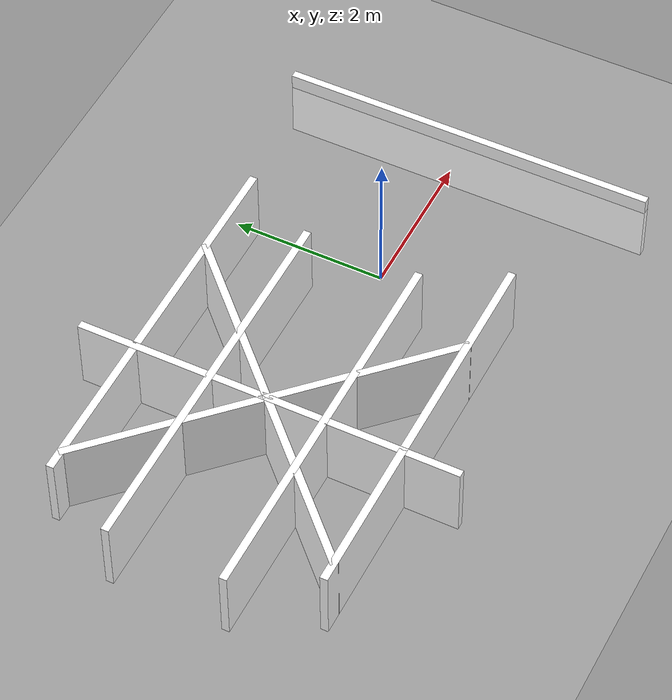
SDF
<sdf version="1.8">
 <world name="demo">
  <plugin filename="gz-sim-physics-system" name="gz::sim::systems::Physics"/>
  <plugin filename="gz-sim-sensors-system" name="gz::sim::systems::Sensors">
   <render_engine>ogre2</render_engine>
  </plugin>
  <plugin filename="gz-sim-scene-broadcaster-system" name="gz::sim::systems::SceneBroadcaster"/>
  <plugin filename="gz-sim-user-commands-system" name="gz::sim::systems::UserCommands"/>
  <plugin filename="gz-sim-imu-system" name="gz::sim::systems::Imu"/>
  <plugin filename="gz-sim-magnetometer-system" name="gz::sim::systems::Magnetometer"/>
  <include><uri>model://sun</uri></include>
  <model name="plane">
   <static>true</static>
   <self_collide>true</self_collide>
   <pose relative_to="world">0 0 0 0 0 0</pose>
   <include merge="true"><uri>model://ground_plane</uri></include>
  </model>
  <include><uri>model://wall_2x5m_</uri><pose>2.5 0 -0.8 0 0 0</pose><name>front</name></include>
  <include><uri>model://wall_2x5m</uri><pose relative_to="front">-3 0.75 0 0 0 0</pose><name>a1</name></include>
  <include>
   <uri>model://wall_2x5m</uri>
   <pose relative_to="front">-3 -0.75 0 0 0 0</pose>
   <name>a2</name>
  </include>
  <include>
   <uri>model://wall_2x5m</uri>
   <pose relative_to="front">-2.5 1.75 0 0 0 0</pose>
   <name>a3</name>
  </include>
  <include>
   <uri>model://wall_2x5m</uri>
   <pose relative_to="front">-2.5 -1.75 0 0 0 0</pose>
   <name>a4</name>
  </include>
  <include><uri>model://wall_2x5m_</uri><pose relative_to="a1">-3 0 0 0 0 0</pose><name>a5</name></include>
  <include>
   <uri>model://wall_2x5m_</uri>
   <pose relative_to="a2">-3 0 0 0 0 0.7853981634</pose>
   <name>a6</name>
  </include>
  <include>
   <uri>model://wall_2x5m_</uri>
   <pose relative_to="a1">-3 0 0 0 0 -0.7853981634</pose>
   <name>a7</name>
  </include>
 </world>
</sdf>

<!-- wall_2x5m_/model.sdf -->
<sdf version='1.8'>
  <model name='room_wall_2x5m_'>
    <link name="link">
      <pose>0 0 0.5 0 0 0</pose>
      <visual name="visual">
        <geometry>
          <box>
            <size>0.1 5.0 1</size>
          </box>
        </geometry>
        <material>
          <ambient>1 1 1 1</ambient>
          <diffuse>1 1 1 1</diffuse>
          <specular>1 1 1 1</specular>
        </material>
      </visual>
      <collision name ="collision">
        <geometry>
           <box>
            <size>0.1 5.0 1</size>
          </box>
        </geometry>
      </collision>
    </link>
    <static>1</static>
    <allow_auto_disable>1</allow_auto_disable>
  </model>
</sdf>

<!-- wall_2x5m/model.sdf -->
<sdf version='1.8'>
  <model name='room_wall_2x5m'>
    <link name="link">
      <pose>0 0 0.5 0 0 1.570796326795</pose>
      <visual name="visual">
        <geometry>
          <box>
            <size>0.1 5.0 1</size>
          </box>
        </geometry>
        <material>
          <ambient>1 1 1 1</ambient>
          <diffuse>1 1 1 1</diffuse>
          <specular>1 1 1 1</specular>
        </material>
      </visual>
      <collision name="collision">
        <geometry>
          <box>
            <size>0.1 5.0 1</size>
          </box>
        </geometry>
      </collision>
    </link>
    <static>1</static>
    <allow_auto_disable>1</allow_auto_disable>
  </model>
</sdf>
